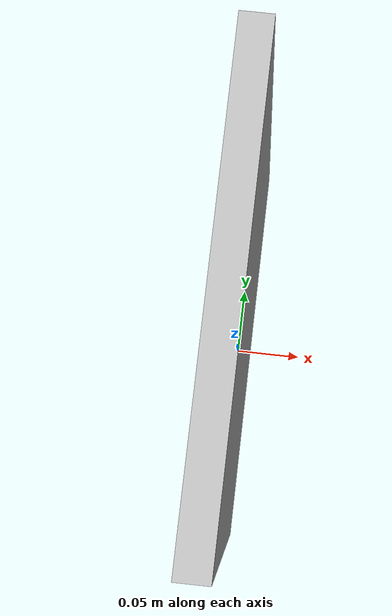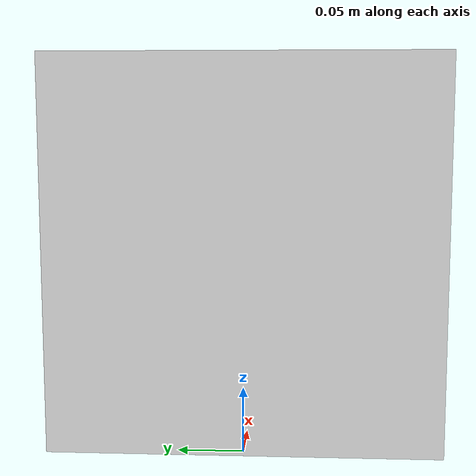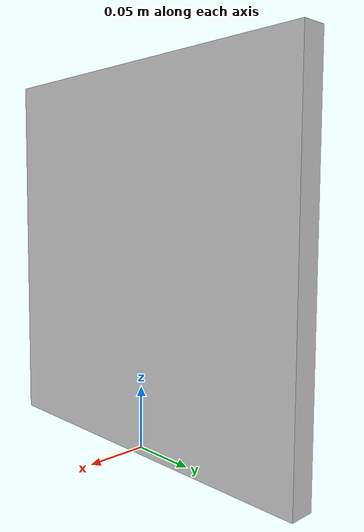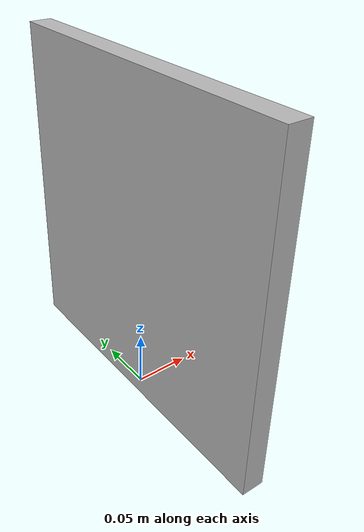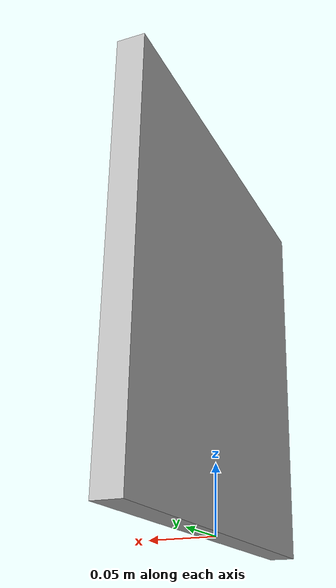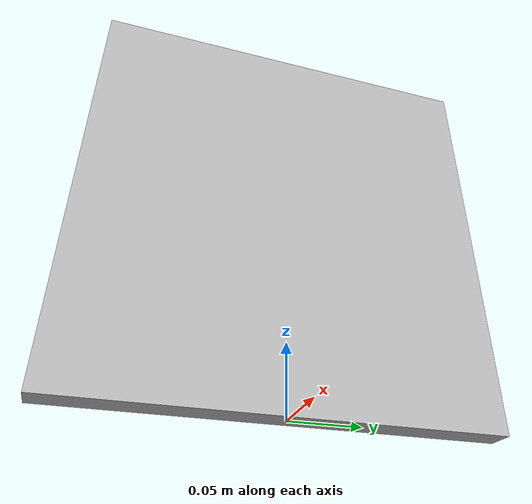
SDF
<?xml version="1.0"?>
<sdf version="1.6">
  <model name="cup">
    <static>true</static>
    <link name="cup_link">
      <pose>0 0 0.15 0 0 0</pose>
      <collision name="collision">
        <geometry>
          <box>
            <size>0.02 0.3 0.3</size>
          </box>
        </geometry>
      </collision>
      <visual name="visual">
        <geometry>
          <box>
            <size>0.02 0.3 0.3</size>
          </box>
        </geometry>
        <material>
          <script>
            <uri>model://cup/materials/scripts</uri>
            <uri>model://cup/materials/textures</uri>
            <name>Cup/Diffuse</name>
          </script>
        </material>
      </visual>
    </link>
  </model>
</sdf>
